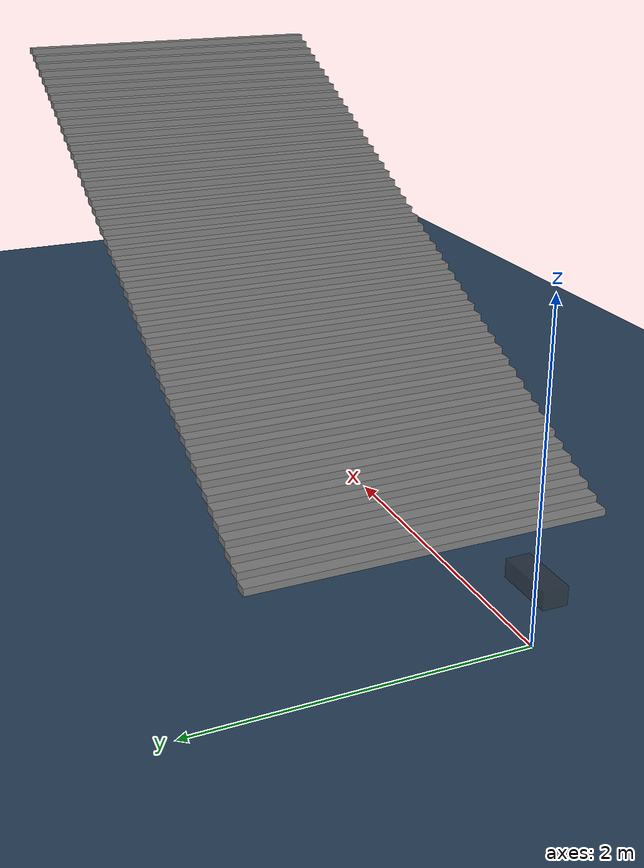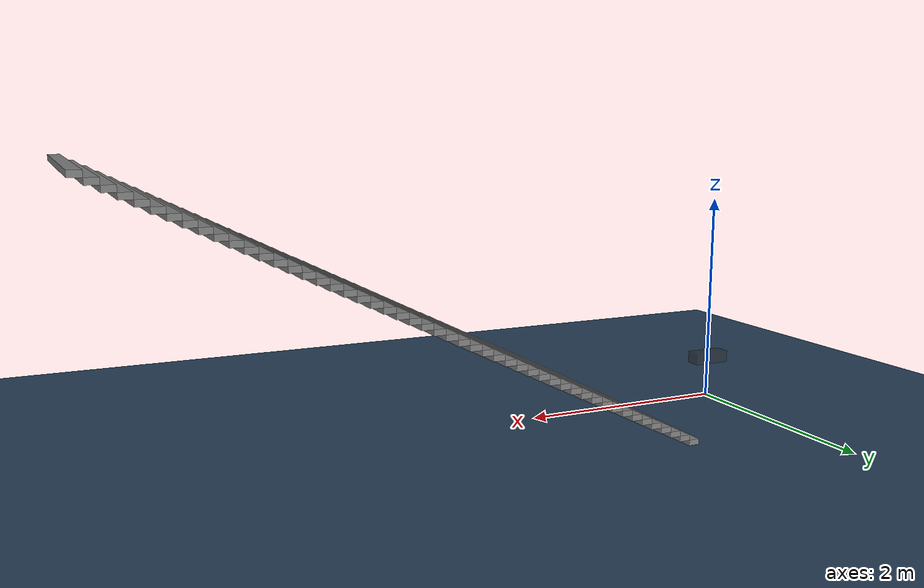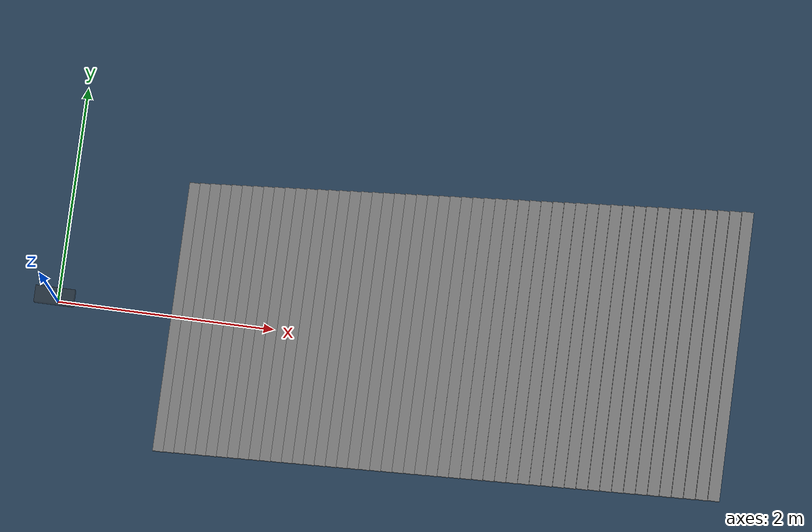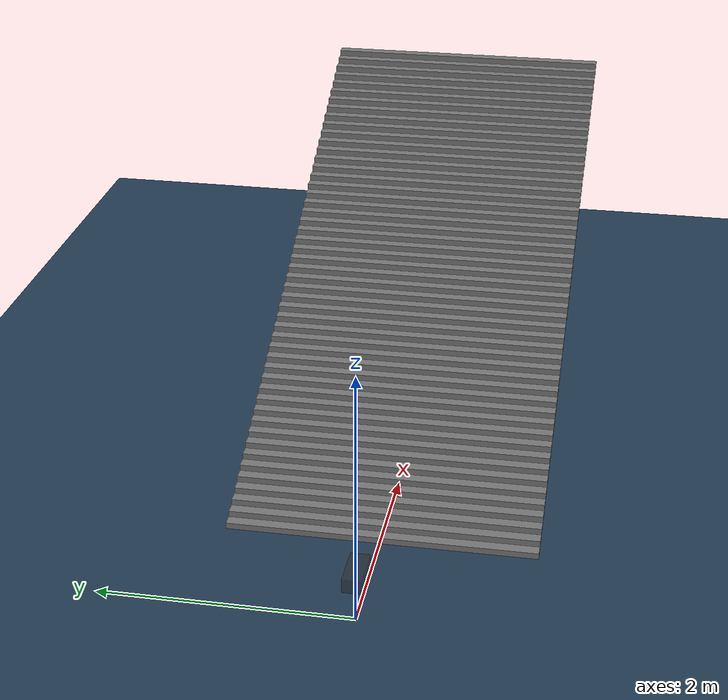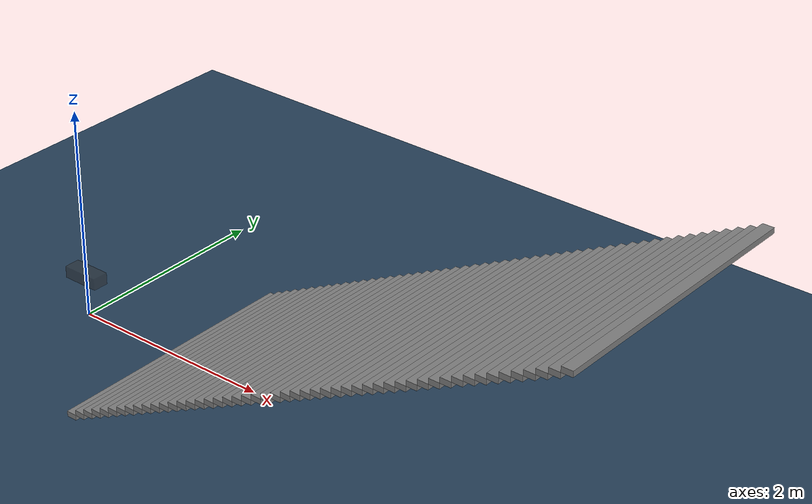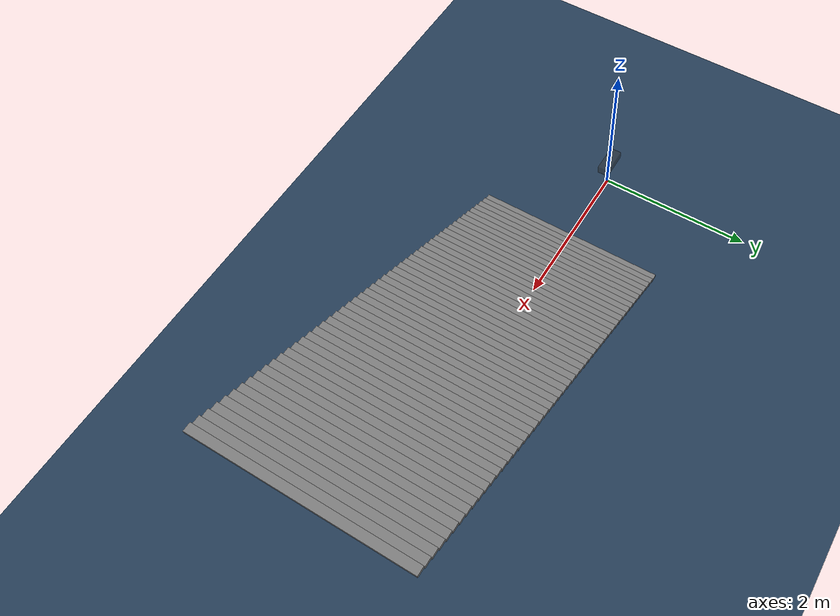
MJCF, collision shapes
<mujoco model="aliengo scene">
  <include file="aliengo.xml" />

  <statistic center="0 0 0.1" extent="0.8" />

  <visual>
    <headlight diffuse="0.6 0.6 0.6" ambient="0.3 0.3 0.3" specular="0 0 0" />
    <rgba haze="0.15 0.25 0.35 1" />
    <global azimuth="-130" elevation="-20" />
  </visual>

  <asset>
    <texture type="skybox" builtin="gradient" rgb1="0.3 0.5 0.7" rgb2="0 0 0" width="512" height="3072" />
    <texture type="2d" name="groundplane" builtin="checker" mark="edge" rgb1="0.2 0.3 0.4" rgb2="0.1 0.2 0.3" markrgb="0.8 0.8 0.8" width="300" height="300" />
    <material name="groundplane" texture="groundplane" texuniform="true" texrepeat="5 5" reflectance="0.2" />
  </asset>

  <worldbody>
    <light pos="0 0 1.5" dir="0 0 -1" directional="true" />
    <geom name="floor" size="0 0 0.05" type="plane" material="groundplane" contype="1" conaffinity="0" condim="3" friction="0.6"/>
  <geom pos="1.1 0.0 0.025" type="box" contype="1" conaffinity="0" size="0.05 1.25 0.025" quat="1.0 0.0 0.0 0.0" /><geom pos="1.2 0.0 0.07500000000000001" type="box" contype="1" conaffinity="0" size="0.05 1.25 0.025" quat="1.0 0.0 0.0 0.0" /><geom pos="1.3 0.0 0.125" type="box" contype="1" conaffinity="0" size="0.05 1.25 0.025" quat="1.0 0.0 0.0 0.0" /><geom pos="1.4 0.0 0.175" type="box" contype="1" conaffinity="0" size="0.05 1.25 0.025" quat="1.0 0.0 0.0 0.0" /><geom pos="1.5 0.0 0.22499999999999998" type="box" contype="1" conaffinity="0" size="0.05 1.25 0.025" quat="1.0 0.0 0.0 0.0" /><geom pos="1.6 0.0 0.27499999999999997" type="box" contype="1" conaffinity="0" size="0.05 1.25 0.025" quat="1.0 0.0 0.0 0.0" /><geom pos="1.7 0.0 0.32499999999999996" type="box" contype="1" conaffinity="0" size="0.05 1.25 0.025" quat="1.0 0.0 0.0 0.0" /><geom pos="1.7999999999999998 0.0 0.37499999999999994" type="box" contype="1" conaffinity="0" size="0.05 1.25 0.025" quat="1.0 0.0 0.0 0.0" /><geom pos="1.9 0.0 0.42499999999999993" type="box" contype="1" conaffinity="0" size="0.05 1.25 0.025" quat="1.0 0.0 0.0 0.0" /><geom pos="2.0 0.0 0.4749999999999999" type="box" contype="1" conaffinity="0" size="0.05 1.25 0.025" quat="1.0 0.0 0.0 0.0" /><geom pos="2.0999999999999996 0.0 0.5249999999999999" type="box" contype="1" conaffinity="0" size="0.05 1.25 0.025" quat="1.0 0.0 0.0 0.0" /><geom pos="2.2 0.0 0.575" type="box" contype="1" conaffinity="0" size="0.05 1.25 0.025" quat="1.0 0.0 0.0 0.0" /><geom pos="2.3 0.0 0.625" type="box" contype="1" conaffinity="0" size="0.05 1.25 0.025" quat="1.0 0.0 0.0 0.0" /><geom pos="2.4000000000000004 0.0 0.675" type="box" contype="1" conaffinity="0" size="0.05 1.25 0.025" quat="1.0 0.0 0.0 0.0" /><geom pos="2.5 0.0 0.7250000000000001" type="box" contype="1" conaffinity="0" size="0.05 1.25 0.025" quat="1.0 0.0 0.0 0.0" /><geom pos="2.6000000000000005 0.0 0.7750000000000001" type="box" contype="1" conaffinity="0" size="0.05 1.25 0.025" quat="1.0 0.0 0.0 0.0" /><geom pos="2.7 0.0 0.8250000000000002" type="box" contype="1" conaffinity="0" size="0.05 1.25 0.025" quat="1.0 0.0 0.0 0.0" /><geom pos="2.8000000000000007 0.0 0.8750000000000002" type="box" contype="1" conaffinity="0" size="0.05 1.25 0.025" quat="1.0 0.0 0.0 0.0" /><geom pos="2.9000000000000004 0.0 0.9250000000000003" type="box" contype="1" conaffinity="0" size="0.05 1.25 0.025" quat="1.0 0.0 0.0 0.0" /><geom pos="3.0000000000000004 0.0 0.9750000000000003" type="box" contype="1" conaffinity="0" size="0.05 1.25 0.025" quat="1.0 0.0 0.0 0.0" /><geom pos="3.1000000000000005 0.0 1.0250000000000004" type="box" contype="1" conaffinity="0" size="0.05 1.25 0.025" quat="1.0 0.0 0.0 0.0" /><geom pos="3.2000000000000006 0.0 1.0750000000000004" type="box" contype="1" conaffinity="0" size="0.05 1.25 0.025" quat="1.0 0.0 0.0 0.0" /><geom pos="3.3000000000000007 0.0 1.1250000000000004" type="box" contype="1" conaffinity="0" size="0.05 1.25 0.025" quat="1.0 0.0 0.0 0.0" /><geom pos="3.400000000000001 0.0 1.1750000000000005" type="box" contype="1" conaffinity="0" size="0.05 1.25 0.025" quat="1.0 0.0 0.0 0.0" /><geom pos="3.500000000000001 0.0 1.2250000000000005" type="box" contype="1" conaffinity="0" size="0.05 1.25 0.025" quat="1.0 0.0 0.0 0.0" /><geom pos="3.600000000000001 0.0 1.2750000000000006" type="box" contype="1" conaffinity="0" size="0.05 1.25 0.025" quat="1.0 0.0 0.0 0.0" /><geom pos="3.700000000000001 0.0 1.3250000000000006" type="box" contype="1" conaffinity="0" size="0.05 1.25 0.025" quat="1.0 0.0 0.0 0.0" /><geom pos="3.800000000000001 0.0 1.3750000000000007" type="box" contype="1" conaffinity="0" size="0.05 1.25 0.025" quat="1.0 0.0 0.0 0.0" /><geom pos="3.9000000000000012 0.0 1.4250000000000007" type="box" contype="1" conaffinity="0" size="0.05 1.25 0.025" quat="1.0 0.0 0.0 0.0" /><geom pos="4.000000000000002 0.0 1.4750000000000008" type="box" contype="1" conaffinity="0" size="0.05 1.25 0.025" quat="1.0 0.0 0.0 0.0" /><geom pos="4.100000000000001 0.0 1.5250000000000008" type="box" contype="1" conaffinity="0" size="0.05 1.25 0.025" quat="1.0 0.0 0.0 0.0" /><geom pos="4.200000000000001 0.0 1.5750000000000008" type="box" contype="1" conaffinity="0" size="0.05 1.25 0.025" quat="1.0 0.0 0.0 0.0" /><geom pos="4.300000000000002 0.0 1.6250000000000009" type="box" contype="1" conaffinity="0" size="0.05 1.25 0.025" quat="1.0 0.0 0.0 0.0" /><geom pos="4.400000000000002 0.0 1.675000000000001" type="box" contype="1" conaffinity="0" size="0.05 1.25 0.025" quat="1.0 0.0 0.0 0.0" /><geom pos="4.500000000000002 0.0 1.725000000000001" type="box" contype="1" conaffinity="0" size="0.05 1.25 0.025" quat="1.0 0.0 0.0 0.0" /><geom pos="4.600000000000001 0.0 1.775000000000001" type="box" contype="1" conaffinity="0" size="0.05 1.25 0.025" quat="1.0 0.0 0.0 0.0" /><geom pos="4.700000000000002 0.0 1.825000000000001" type="box" contype="1" conaffinity="0" size="0.05 1.25 0.025" quat="1.0 0.0 0.0 0.0" /><geom pos="4.8000000000000025 0.0 1.875000000000001" type="box" contype="1" conaffinity="0" size="0.05 1.25 0.025" quat="1.0 0.0 0.0 0.0" /><geom pos="4.900000000000002 0.0 1.9250000000000012" type="box" contype="1" conaffinity="0" size="0.05 1.25 0.025" quat="1.0 0.0 0.0 0.0" /><geom pos="5.000000000000002 0.0 1.9750000000000012" type="box" contype="1" conaffinity="0" size="0.05 1.25 0.025" quat="1.0 0.0 0.0 0.0" /><geom pos="5.100000000000001 0.0 2.0250000000000012" type="box" contype="1" conaffinity="0" size="0.05 1.25 0.025" quat="1.0 0.0 0.0 0.0" /><geom pos="5.200000000000001 0.0 2.075000000000001" type="box" contype="1" conaffinity="0" size="0.05 1.25 0.025" quat="1.0 0.0 0.0 0.0" /><geom pos="5.300000000000001 0.0 2.125000000000001" type="box" contype="1" conaffinity="0" size="0.05 1.25 0.025" quat="1.0 0.0 0.0 0.0" /><geom pos="5.4 0.0 2.1750000000000007" type="box" contype="1" conaffinity="0" size="0.05 1.25 0.025" quat="1.0 0.0 0.0 0.0" /><geom pos="5.5 0.0 2.2250000000000005" type="box" contype="1" conaffinity="0" size="0.05 1.25 0.025" quat="1.0 0.0 0.0 0.0" /><geom pos="5.6 0.0 2.2750000000000004" type="box" contype="1" conaffinity="0" size="0.05 1.25 0.025" quat="1.0 0.0 0.0 0.0" /><geom pos="5.699999999999999 0.0 2.325" type="box" contype="1" conaffinity="0" size="0.05 1.25 0.025" quat="1.0 0.0 0.0 0.0" /><geom pos="5.799999999999999 0.0 2.375" type="box" contype="1" conaffinity="0" size="0.05 1.25 0.025" quat="1.0 0.0 0.0 0.0" /><geom pos="5.899999999999999 0.0 2.425" type="box" contype="1" conaffinity="0" size="0.05 1.25 0.025" quat="1.0 0.0 0.0 0.0" /><geom pos="5.999999999999998 0.0 2.4749999999999996" type="box" contype="1" conaffinity="0" size="0.05 1.25 0.025" quat="1.0 0.0 0.0 0.0" /></worldbody>
</mujoco>

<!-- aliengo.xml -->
<mujoco model="aliengo_description">
    <compiler angle="radian" meshdir="./assets/" />
    <option impratio="1" iterations="10" ls_iterations="5" timestep="0.004" integrator="Euler">
        <flag eulerdamp="disable"/>
    </option>
    <default>
        <light castshadow="false" diffuse="1 1 1"/>
        <camera fovy="60"/>
        <joint damping="0.6" armature="0.01" frictionloss="0.2" />
        <!-- Globally disable all collisions; only feet re-enable them -->
        <geom condim="1" contype="0" conaffinity="0"/>

        <default class="visual">
            <geom type="mesh" contype="0" conaffinity="0" group="2"/>
        </default>
        <default class="collision">
            <geom group="3" rgba="0.2 0.2 0.2 0.5"/>
        </default>

        <default class="hip">
            <motor ctrlrange="-44.4 44.4"/>
        </default>
        <default class="thigh">
            <motor ctrlrange="-35.278 35.278"/>
        </default>
        <default class="calf">
            <motor ctrlrange="-35.278 35.278"/>
        </default>

    </default>

    <asset>
        <mesh name="trunk" file="trunk.stl" />
        <mesh name="hip" file="hip.stl" />
        <mesh name="thigh_mirror" file="thigh_mirror.stl" />
        <mesh name="calf" file="calf.stl" />
        <mesh name="thigh" file="thigh.stl" />
    </asset>

    <worldbody>
        <light directional="true" diffuse=".8 .8 .8" pos="0 0 10" dir="0 0 -10"/>
        <camera pos="1.794 0.068 0.397" mode="trackcom" xyaxes="0.008 1.000 0.000 -0.155 0.001 0.988"/>
        <camera name="track" mode="trackcom" pos="0 -1.3 1.6" xyaxes="1 0 0 0 0.707 0.707"/>

        <body name="trunk" pos="0 0 0.4">
            <inertial pos="0.00846406 0.00404455 -0.000762916" quat="-3.12625e-05 0.708321 0.00247254 0.705886" mass="13.042" diaginertia="0.174706 0.161175 0.033357" />
            <freejoint/>

            <!-- trunk visual mesh and collision -->
            <geom type="mesh" class="visual" rgba="0.2 0.2 0.2 1" mesh="trunk"/>
            <geom type="box" class="collision" size="0.18 0.075 0.056" contype="0" conaffinity="0"/>

            <!-- modify this to add payload -->

            <!-- imu and camera -->
            <site name="imu" pos="0 0 0"/>
            <camera name="robotcam" pos="0.31 -0.005 0.00292751" quat= "0.4 0.4 -0.4 -0.4"/>

            <!-- FL leg -->
            <body name="FL_hip" pos="0.2399 0.051 0">
                <inertial pos="-0.022191 0.015144 -1.5e-05" quat="-0.0135493 0.706835 0.0117635 0.707151" mass="1.993" diaginertia="0.00558695 0.00491009 0.00290132" />
                <joint name="FL_hip_joint" pos="0 0 0" axis="1 0 0" limited="true" range="-1.22173 1.22173" />

                <!-- FL_hip visual mesh and collision -->
                <geom type="mesh" class="visual" rgba="0.2 0.2 0.2 1" mesh="hip"/>

                <body name="FL_thigh" pos="0 0.083 0">
                    <inertial pos="-0.005607 -0.003877 -0.048199" quat="0.717987 -0.031246 -0.0335669 0.694544" mass="0.639" diaginertia="0.0058474 0.00571186 0.000324584" />
                    <joint name="FL_thigh_joint" pos="0 0 0" axis="0 1 0" limited="true" range="-0.686 4.501"/>

                    <!-- FL_thigh visual mesh and collision -->
                    <geom type="mesh" class="visual" rgba="0.2 0.2 0.2 1" mesh="thigh"/>

                    <body name="FL_calf" pos="0 0 -0.25">
                        <inertial pos="0.00215606 4.88427e-05 -0.166671" quat="0.707462 0.00517582 0.00535172 0.706712" mass="0.267" diaginertia="0.00690975 0.00689712 5.4885e-05" />
                        <joint name="FL_calf_joint" pos="0 0 0" axis="0 1 0" limited="true" range="-2.77507 -0.645772" />

                        <!-- FL_calf visual mesh and collision -->
                        <geom type="mesh" class="visual" rgba="0 0 0 1" mesh="calf" />

                        <!-- FL_foot only collision -->
                        <geom name="FL" class="collision" size="0.0265" pos="0 0 -0.25" contype="0" conaffinity="1"/>
                        <site name="FL" pos="0 0 -0.213" type="sphere" size="0.023" group="5"/>
                    </body>
                </body>
            </body>

            <!-- FR leg -->
            <body name="FR_hip" pos="0.2399 -0.051 0">
                <inertial pos="-0.022191 -0.015144 -1.5e-05" quat="0.0135493 0.706835 -0.0117635 0.707151" mass="1.993" diaginertia="0.00558695 0.00491009 0.00290132" />
                <joint name="FR_hip_joint" pos="0 0 0" axis="1 0 0" limited="true" range="-1.22173 1.22173" />

                <!-- FR_hip visual mesh and collision -->
                <geom type="mesh" mesh="hip" class="visual" quat="0 1 0 0" rgba="0.2 0.2 0.2 1"/>

                <body name="FR_thigh" pos="0 -0.083 0">
                    <inertial pos="-0.005607 0.003877 -0.048199" quat="0.694544 -0.0335669 -0.031246 0.717987" mass="0.639" diaginertia="0.0058474 0.00571186 0.000324584" />
                    <joint name="FR_thigh_joint" pos="0 0 0" axis="0 1 0" limited="true" range="-0.686 4.501"/>

                    <!-- FR_thigh visual mesh and collision -->
                    <geom type="mesh" mesh="thigh_mirror" class="visual" rgba="0.2 0.2 0.2 1" />

                    <body name="FR_calf" pos="0 0 -0.25">
                        <inertial pos="0.00215606 4.88427e-05 -0.166671" quat="0.707462 0.00517582 0.00535172 0.706712" mass="0.267" diaginertia="0.00690975 0.00689712 5.4885e-05" />
                        <joint name="FR_calf_joint" pos="0 0 0" axis="0 1 0" limited="true" range="-2.77507 -0.645772" />

                        <!-- FR_calf visual mesh and collision -->
                        <geom type="mesh" mesh="calf" class="visual" rgba="0 0 0 1"/>

                        <!-- FR_foot only collision -->
                        <geom name="FR" class="collision" size="0.0265" pos="0 0 -0.25" contype="0" conaffinity="1"/>
                        <site name="FR" pos="0 0 -0.213" type="sphere" size="0.023" group="5"/>
                    </body>
                </body>
            </body>

            <!-- RL leg -->
            <body name="RL_hip" pos="-0.2399 0.051 0">
                <inertial pos="0.022191 0.015144 -1.5e-05" quat="0.0117635 0.707151 -0.0135493 0.706835" mass="1.993" diaginertia="0.00558695 0.00491009 0.00290132" />
                <joint name="RL_hip_joint" pos="0 0 0" axis="1 0 0" limited="true" range="-1.22173 1.22173" />

                <!-- RL_hip visual mesh and collision -->
                <geom type="mesh" class="visual" quat="0 0 1 0" rgba="0.2 0.2 0.2 1" mesh="hip"/>

                <body name="RL_thigh" pos="0 0.083 0">
                    <inertial pos="-0.005607 -0.003877 -0.048199" quat="0.717987 -0.031246 -0.0335669 0.694544" mass="0.639" diaginertia="0.0058474 0.00571186 0.000324584" />
                    <joint name="RL_thigh_joint" pos="0 0 0" axis="0 1 0" limited="true" range="-0.686 4.501"/>

                    <!-- RL_thigh visual mesh and collision -->
                    <geom type="mesh" class="visual" rgba="0.2 0.2 0.2 1" mesh="thigh"/>

                    <body name="RL_calf" pos="0 0 -0.25">
                        <inertial pos="0.00215606 4.88427e-05 -0.166671" quat="0.707462 0.00517582 0.00535172 0.706712" mass="0.267" diaginertia="0.00690975 0.00689712 5.4885e-05" />
                        <joint name="RL_calf_joint" pos="0 0 0" axis="0 1 0" limited="true" range="-2.77507 -0.645772" />

                        <!-- RL_calf visual mesh and collision -->
                        <geom type="mesh" class="visual" rgba="0 0 0 1" mesh="calf"/>

                        <!-- RL_foot only collision -->
                        <geom name="RL" class="collision" size="0.0265" pos="0 0 -0.25" contype="0" conaffinity="1"/>
                        <site name="RL" pos="0 0 -0.213" type="sphere" size="0.023" group="5"/>
                    </body>
                </body>
            </body>

            <!-- RR leg -->
            <body name="RR_hip" pos="-0.2399 -0.051 0">
                <inertial pos="0.022191 -0.015144 -1.5e-05" quat="-0.0117635 0.707151 0.0135493 0.706835" mass="1.993" diaginertia="0.00558695 0.00491009 0.00290132" />
                <joint name="RR_hip_joint" pos="0 0 0" axis="1 0 0" limited="true" range="-1.22173 1.22173" />

                <!-- RR_hip visual mesh and collision -->
                <geom type="mesh" class="visual" quat="0 0 0 -1" rgba="0.2 0.2 0.2 1" mesh="hip"/>

                <body name="RR_thigh" pos="0 -0.083 0">
                    <inertial pos="-0.005607 0.003877 -0.048199" quat="0.694544 -0.0335669 -0.031246 0.717987" mass="0.639" diaginertia="0.0058474 0.00571186 0.000324584" />
                    <joint name="RR_thigh_joint" pos="0 0 0" axis="0 1 0" limited="true" range="-0.686 4.501"/>

                    <!-- RR_thigh visual mesh and collision -->
                    <geom type="mesh" class="visual" rgba="0.2 0.2 0.2 1" mesh="thigh_mirror"/>

                    <body name="RR_calf" pos="0 0 -0.25">
                        <inertial pos="0.00215606 4.88427e-05 -0.166671" quat="0.707462 0.00517582 0.00535172 0.706712" mass="0.267" diaginertia="0.00690975 0.00689712 5.4885e-05" />
                        <joint name="RR_calf_joint" pos="0 0 0" axis="0 1 0" limited="true" range="-2.77507 -0.645772" />

                        <!-- RR_calf visual mesh and collision -->
                        <geom type="mesh" class="visual" rgba="0 0 0 1" mesh="calf"/>

                        <!-- RR_foot only collision -->
                        <geom name="RR" class="collision" size="0.0265" pos="0 0 -0.25" rgba="0 0 0 0" contype="0" conaffinity="1"/>
                        <site name="RR" pos="0 0 -0.213" type="sphere" size="0.023" group="5"/>
                    </body>
                </body>
            </body>
        </body>
    </worldbody>

    <actuator>
        <motor name="FL_hip"   class="hip"    gear="1" joint="FL_hip_joint"/>
        <motor name="FL_thigh" class="thigh"  gear="1" joint="FL_thigh_joint"/>
        <motor name="FL_calf"  class="calf"   gear="1" joint="FL_calf_joint"/>
        <motor name="FR_hip"   class="hip"    gear="1" joint="FR_hip_joint"/>
        <motor name="FR_thigh" class="thigh"  gear="1" joint="FR_thigh_joint"/>
        <motor name="FR_calf"  class="calf"   gear="1" joint="FR_calf_joint"/>
        <motor name="RL_hip"   class="hip"    gear="1" joint="RL_hip_joint"/>
        <motor name="RL_thigh" class="thigh"  gear="1" joint="RL_thigh_joint"/>
        <motor name="RL_calf"  class="calf"   gear="1" joint="RL_calf_joint"/>
        <motor name="RR_hip"   class="hip"    gear="1" joint="RR_hip_joint"/>
        <motor name="RR_thigh" class="thigh"  gear="1" joint="RR_thigh_joint"/>
        <motor name="RR_calf"  class="calf"   gear="1" joint="RR_calf_joint" />
    </actuator>

    <sensor>

        <framepos name="Body_Pos" objtype="site" objname="imu"/>

        <framequat name="Body_Quat" objtype="site" objname="imu"/>

        <gyro site="imu" name="gyro"/>
        <velocimeter site="imu" name="local_linvel"/>
        <accelerometer site="imu" name="accelerometer"/>
        <framepos objtype="site" objname="imu" name="position"/>
        <framezaxis objtype="site" objname="imu" name="upvector"/>
        <framexaxis objtype="site" objname="imu" name="forwardvector"/>
        <framelinvel objtype="site" objname="imu" name="global_linvel"/>
        <frameangvel objtype="site" objname="imu" name="global_angvel"/>
        <framequat objtype="site" objname="imu" name="orientation"/>
        <framelinvel objtype="site" objname="FR" name="FR_global_linvel"/>
        <framelinvel objtype="site" objname="FL" name="FL_global_linvel"/>
        <framelinvel objtype="site" objname="RR" name="RR_global_linvel"/>
        <framelinvel objtype="site" objname="RL" name="RL_global_linvel"/>
        <framepos objtype="site" objname="FR" name="FR_pos" reftype="site" refname="imu"/>
        <framepos objtype="site" objname="FL" name="FL_pos" reftype="site" refname="imu"/>
        <framepos objtype="site" objname="RR" name="RR_pos" reftype="site" refname="imu"/>
        <framepos objtype="site" objname="RL" name="RL_pos" reftype="site" refname="imu"/>

        <touch name="FL_touch" site="FL"/>
        <touch name="FR_touch" site="FR"/>
        <touch name="RL_touch" site="RL"/>
        <touch name="RR_touch" site="RR"/>

    </sensor>

    <keyframe>
        <key name="home" qpos="0 0 0.35 1 0 0 0 0 0.9 -1.8 0 0.9 -1.8 0 0.9 -1.8 0 0.9 -1.8"
        ctrl="0.1 0.9 -1.8 -0.1 0.9 -1.8 0.1 0.9 -1.8 -0.1 0.9 -1.8"/>
    </keyframe>
</mujoco>
